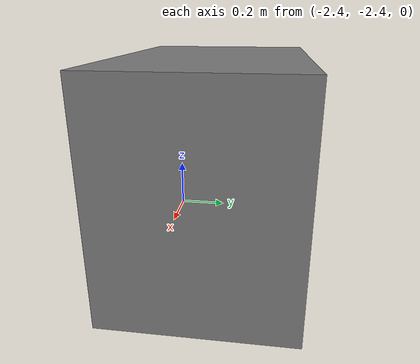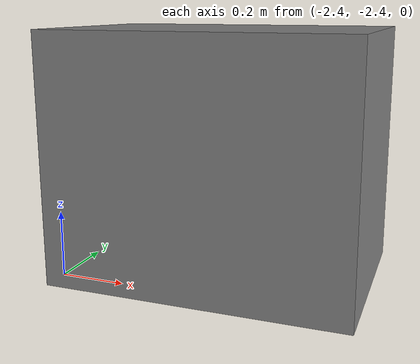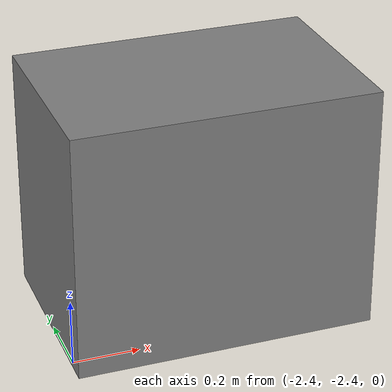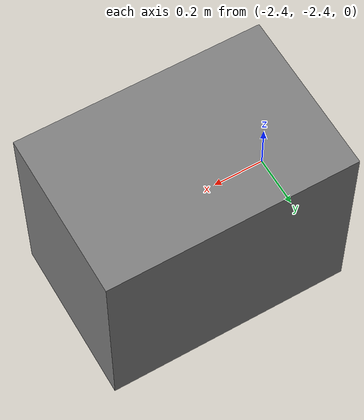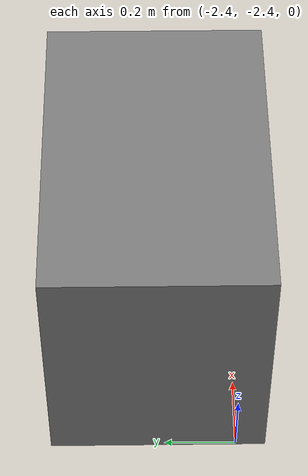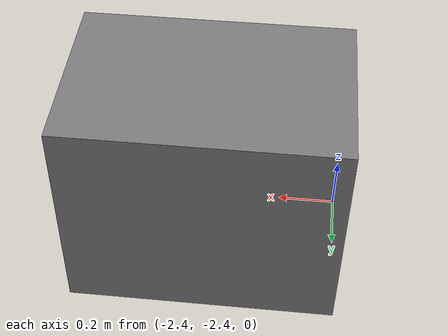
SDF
<?xml version="1.0" ?>
<sdf version="1.6">
  <model name="teach_table">
    <static>true</static>

    <link name="teach_table_link">

      <visual name="teach_table_visual">
        <pose> -1.95505 -2.181225 0.371475 0 0 0</pose>
        <geometry>
          <box>
            <size> 0.9017 0.60325 0.74295 </size>
          </box>
        </geometry>
        <material>
            <ambient>0.0 0.0 0.0 1.0</ambient>
            <diffuse>0.5 0.5 0.5 1.0</diffuse>
        </material>
      </visual>

      <collision name="teach_table_collision">
        <pose> -1.95505 -2.181225 0.371475 0 0 0</pose>
        <geometry>
          <box>
            <size> 0.9017 0.60325 0.74295 </size>
          </box>
        </geometry>
      </collision>

    </link>
  </model>
</sdf>
